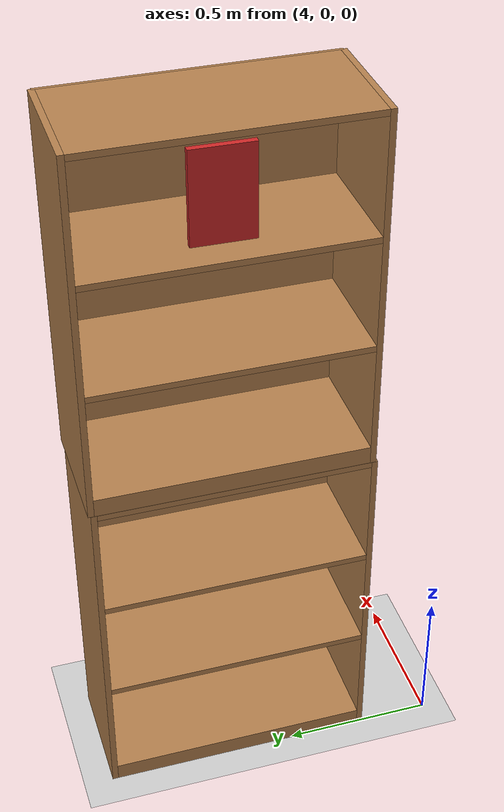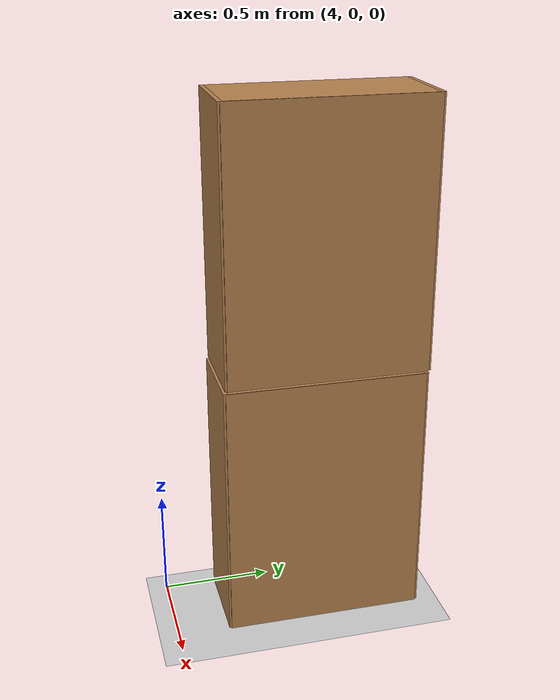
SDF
<sdf version="1.6">
 <world name="default">
  <model name="ground_plane">
   <static>1</static>
   <link name="link">
    <collision name="collision">
     <geometry><plane><normal>0 0 1</normal><size>100 100</size></plane></geometry>
     <surface><friction><ode><mu>100</mu><mu2>50</mu2></ode></friction></surface>
    </collision>
    <visual name="visual">
     <cast_shadows>0</cast_shadows>
     <geometry><plane><normal>0 0 1</normal><size>100 100</size></plane></geometry>
     <material>
      <script><uri>file://media/materials/scripts/gazebo.material</uri><name>Gazebo/Grey</name></script>
     </material>
    </visual>
   </link>
  </model>
  <model name="bookshelf_4_clone_1">
   <static>1</static>
   <link name="link">
    <inertial><mass>1</mass></inertial>
    <collision name="back">
     <pose>0 0.005 0.6 0 -0 0</pose>
     <geometry><box><size>0.9 0.01 1.2</size></box></geometry>
    </collision>
    <visual name="visual1">
     <pose>0 0.005 0.6 0 -0 0</pose>
     <geometry><box><size>0.9 0.01 1.2</size></box></geometry>
     <material>
      <script><uri>file://media/materials/scripts/gazebo.material</uri><name>Gazebo/Wood</name></script>
     </material>
    </visual>
    <collision name="left_side">
     <pose>0.45 -0.195 0.6 0 -0 0</pose>
     <geometry><box><size>0.02 0.4 1.2</size></box></geometry>
    </collision>
    <visual name="visual2">
     <pose>0.45 -0.195 0.6 0 -0 0</pose>
     <geometry><box><size>0.02 0.4 1.2</size></box></geometry>
     <material>
      <script><uri>file://media/materials/scripts/gazebo.material</uri><name>Gazebo/Wood</name></script>
     </material>
    </visual>
    <collision name="right_side">
     <pose>-0.45 -0.195 0.6 0 -0 0</pose>
     <geometry><box><size>0.02 0.4 1.2</size></box></geometry>
    </collision>
    <visual name="visual3">
     <pose>-0.45 -0.195 0.6 0 -0 0</pose>
     <geometry><box><size>0.02 0.4 1.2</size></box></geometry>
     <material>
      <script><uri>file://media/materials/scripts/gazebo.material</uri><name>Gazebo/Wood</name></script>
     </material>
    </visual>
    <collision name="bottom">
     <pose>0 -0.195 0.03 0 -0 0</pose>
     <geometry><box><size>0.88 0.4 0.06</size></box></geometry>
    </collision>
    <visual name="visual4">
     <pose>0 -0.195 0.03 0 -0 0</pose>
     <geometry><box><size>0.88 0.4 0.06</size></box></geometry>
     <material>
      <script><uri>file://media/materials/scripts/gazebo.material</uri><name>Gazebo/Wood</name></script>
     </material>
    </visual>
    <collision name="top">
     <pose>0 -0.195 1.19 0 -0 0</pose>
     <geometry><box><size>0.88 0.4 0.02</size></box></geometry>
    </collision>
    <visual name="visual5">
     <pose>0 -0.195 1.19 0 -0 0</pose>
     <geometry><box><size>0.88 0.4 0.02</size></box></geometry>
     <material>
      <script><uri>file://media/materials/scripts/gazebo.material</uri><name>Gazebo/Wood</name></script>
     </material>
    </visual>
    <collision name="low_shelf">
     <pose>0 -0.195 0.43 0 -0 0</pose>
     <geometry><box><size>0.88 0.4 0.02</size></box></geometry>
    </collision>
    <visual name="visual6">
     <pose>0 -0.195 0.43 0 -0 0</pose>
     <geometry><box><size>0.88 0.4 0.02</size></box></geometry>
     <material>
      <script><uri>file://media/materials/scripts/gazebo.material</uri><name>Gazebo/Wood</name></script>
     </material>
    </visual>
    <collision name="high_shelf">
     <pose>0 -0.195 0.8 0 -0 0</pose>
     <geometry><box><size>0.88 0.4 0.02</size></box></geometry>
    </collision>
    <visual name="visual7">
     <pose>0 -0.195 0.8 0 -0 0</pose>
     <geometry><box><size>0.88 0.4 0.02</size></box></geometry>
     <material>
      <script><uri>file://media/materials/scripts/gazebo.material</uri><name>Gazebo/Wood</name></script>
     </material>
    </visual>
   </link>
   <pose>4.39312 0.69592 0 0 0 -1.5727</pose>
  </model>
  <model name="bookshelf_4_clone_1_clone_clone_0">
   <static>1</static>
   <link name="link">
    <inertial><mass>1</mass></inertial>
    <collision name="back">
     <pose>0 0.005 0.6 0 -0 0</pose>
     <geometry><box><size>0.9 0.01 1.2</size></box></geometry>
    </collision>
    <visual name="visual1">
     <pose>0 0.005 0.6 0 -0 0</pose>
     <geometry><box><size>0.9 0.01 1.2</size></box></geometry>
     <material>
      <script><uri>file://media/materials/scripts/gazebo.material</uri><name>Gazebo/Wood</name></script>
     </material>
    </visual>
    <collision name="left_side">
     <pose>0.45 -0.195 0.6 0 -0 0</pose>
     <geometry><box><size>0.02 0.4 1.2</size></box></geometry>
    </collision>
    <visual name="visual2">
     <pose>0.45 -0.195 0.6 0 -0 0</pose>
     <geometry><box><size>0.02 0.4 1.2</size></box></geometry>
     <material>
      <script><uri>file://media/materials/scripts/gazebo.material</uri><name>Gazebo/Wood</name></script>
     </material>
    </visual>
    <collision name="right_side">
     <pose>-0.45 -0.195 0.6 0 -0 0</pose>
     <geometry><box><size>0.02 0.4 1.2</size></box></geometry>
    </collision>
    <visual name="visual3">
     <pose>-0.45 -0.195 0.6 0 -0 0</pose>
     <geometry><box><size>0.02 0.4 1.2</size></box></geometry>
     <material>
      <script><uri>file://media/materials/scripts/gazebo.material</uri><name>Gazebo/Wood</name></script>
     </material>
    </visual>
    <collision name="bottom">
     <pose>0 -0.195 0.03 0 -0 0</pose>
     <geometry><box><size>0.88 0.4 0.06</size></box></geometry>
    </collision>
    <visual name="visual4">
     <pose>0 -0.195 0.03 0 -0 0</pose>
     <geometry><box><size>0.88 0.4 0.06</size></box></geometry>
     <material>
      <script><uri>file://media/materials/scripts/gazebo.material</uri><name>Gazebo/Wood</name></script>
     </material>
    </visual>
    <collision name="top">
     <pose>0 -0.195 1.19 0 -0 0</pose>
     <geometry><box><size>0.88 0.4 0.02</size></box></geometry>
    </collision>
    <visual name="visual5">
     <pose>0 -0.195 1.19 0 -0 0</pose>
     <geometry><box><size>0.88 0.4 0.02</size></box></geometry>
     <material>
      <script><uri>file://media/materials/scripts/gazebo.material</uri><name>Gazebo/Wood</name></script>
     </material>
    </visual>
    <collision name="low_shelf">
     <pose>0 -0.195 0.43 0 -0 0</pose>
     <geometry><box><size>0.88 0.4 0.02</size></box></geometry>
    </collision>
    <visual name="visual6">
     <pose>0 -0.195 0.43 0 -0 0</pose>
     <geometry><box><size>0.88 0.4 0.02</size></box></geometry>
     <material>
      <script><uri>file://media/materials/scripts/gazebo.material</uri><name>Gazebo/Wood</name></script>
     </material>
    </visual>
    <collision name="high_shelf">
     <pose>0 -0.195 0.8 0 -0 0</pose>
     <geometry><box><size>0.88 0.4 0.02</size></box></geometry>
    </collision>
    <visual name="visual7">
     <pose>0 -0.195 0.8 0 -0 0</pose>
     <geometry><box><size>0.88 0.4 0.02</size></box></geometry>
     <material>
      <script><uri>file://media/materials/scripts/gazebo.material</uri><name>Gazebo/Wood</name></script>
     </material>
    </visual>
   </link>
   <pose>4.38615 0.705306 1.20741 0 0 -1.5727</pose>
  </model>
  <model name="redcube_clone_clone_22_clone_clone_22_clone_clone_2">
   <static>1</static>
   <link name="link">
    <pose>0 0 0.21 0 -0 0</pose>
    <collision name="collision"><geometry><box><size>0.2 0.02 0.3</size></box></geometry></collision>
    <visual name="visual">
     <geometry><box><size>0.2 0.02 0.3</size></box></geometry>
     <material>
      <script><uri>file://media/materials/scripts/gazebo.material</uri><name>Gazebo/Red</name></script>
     </material>
    </visual>
   </link>
   <pose>4.0984 0.701783 1.95914 0 -0 1.55372</pose>
  </model>
 </world>
</sdf>
